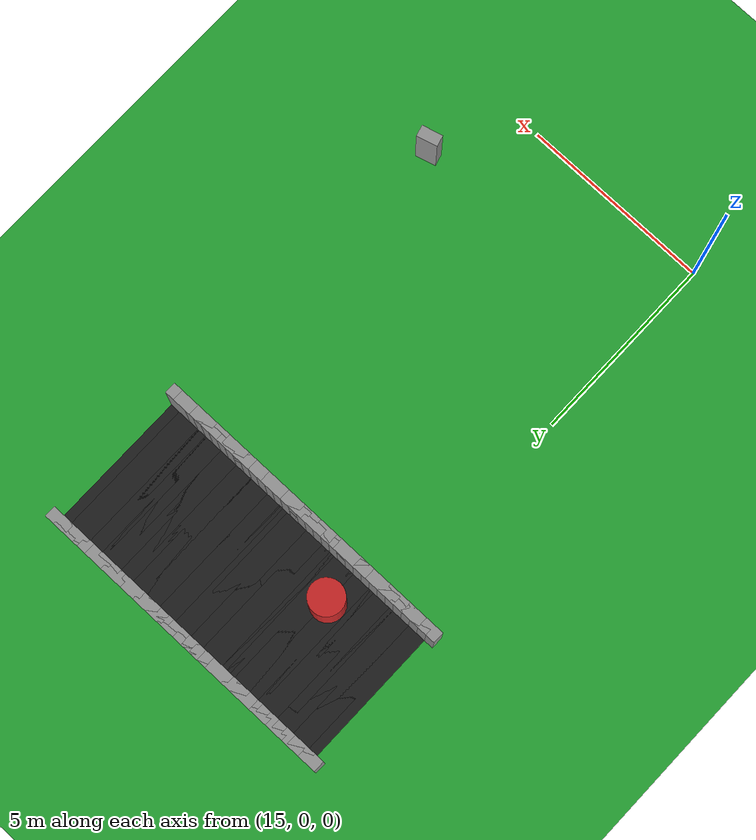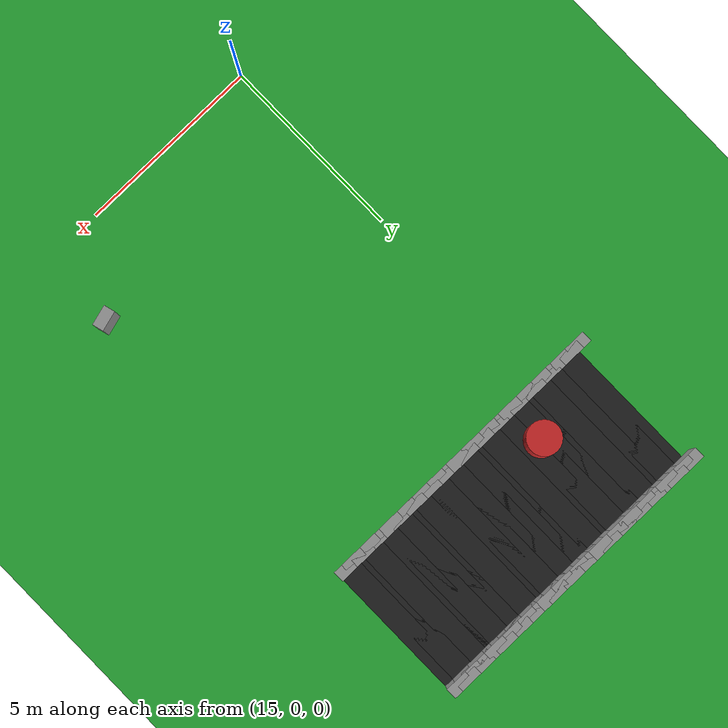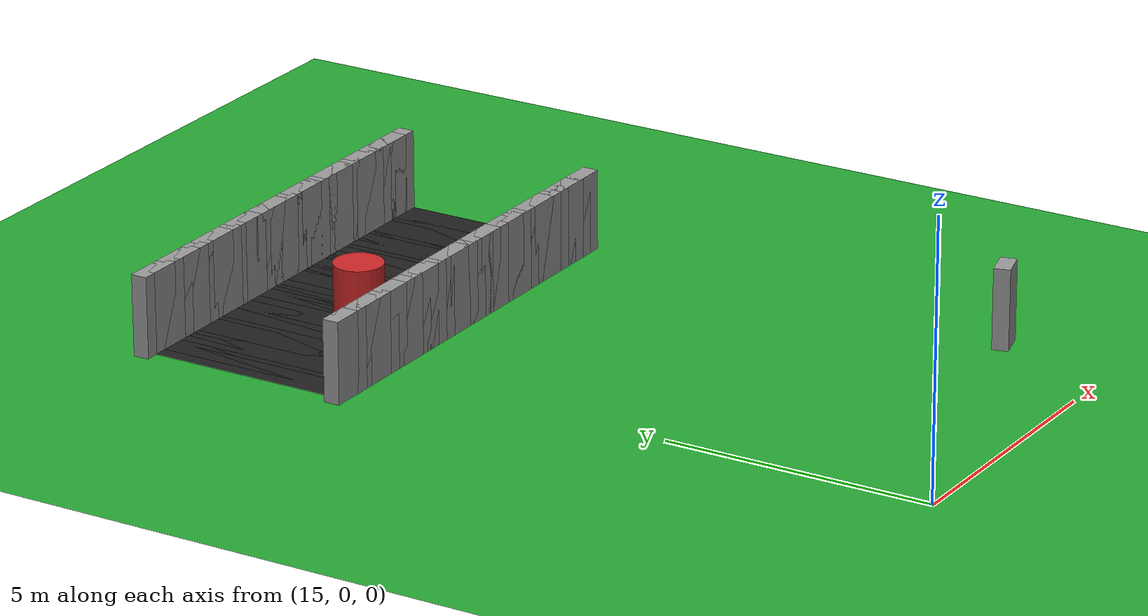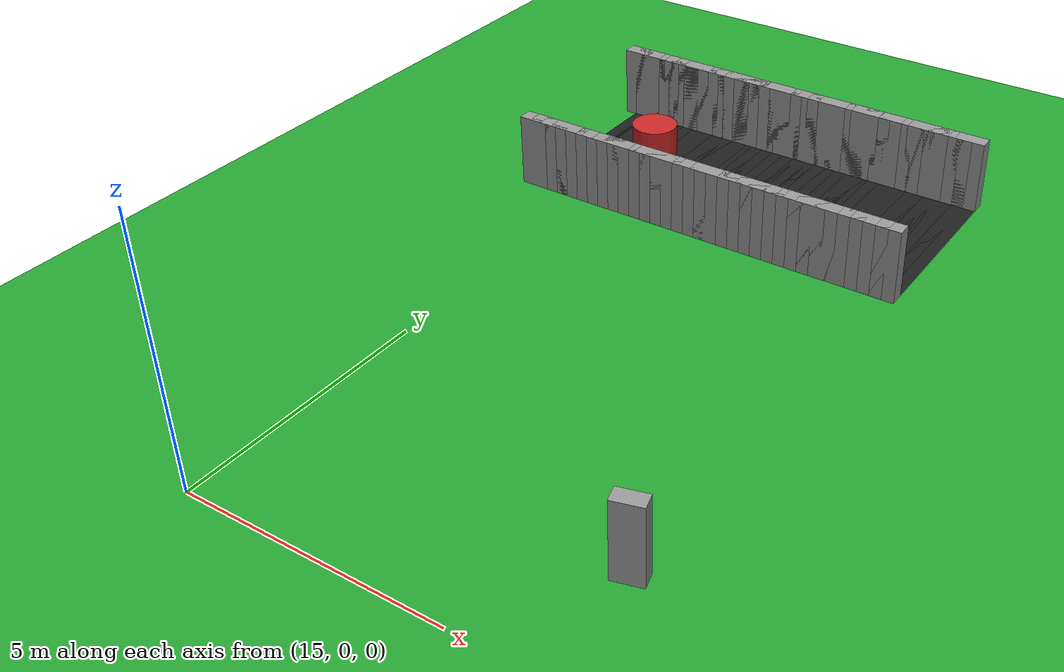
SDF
<sdf version="1.6">
 <world name="obstacle_tight">
  <include><uri>model://sun</uri></include>
  <model name="ground_plane">
   <static>true</static>
   <link name="link">
    <collision name="collision">
     <surface><friction><ode><mu>100</mu><mu2>50</mu2></ode></friction></surface>
     <geometry><plane><normal>0 0 1</normal><size>120 120</size></plane></geometry>
    </collision>
    <visual name="visual">
     <geometry><plane><normal>0 0 1</normal><size>120 120</size></plane></geometry>
     <material>
      <script><uri>file://media/materials/scripts/gazebo.material</uri><name>Gazebo/Green</name></script>
     </material>
    </visual>
   </link>
  </model>
  <model name="curbL_88">
   <static>true</static>
   <pose>21.596 2.165 0.750 0 0 0.26704</pose>
   <link name="link">
    <collision name="collision"><geometry><box><size>0.550 0.300 1.500</size></box></geometry></collision>
    <visual name="visual">
     <geometry><box><size>0.550 0.300 1.500</size></box></geometry>
     <material>
      <script><uri>file://media/materials/scripts/gazebo.material</uri><name>Gazebo/Grey</name></script>
     </material>
    </visual>
   </link>
  </model>
  <model name="asphalt_185">
   <static>true</static>
   <pose>21.549 12.562 0.005 0 0 3.14159</pose>
   <link name="link">
    <visual name="visual">
     <geometry><box><size>0.610 3.600 0.010</size></box></geometry>
     <material>
      <script><uri>file://media/materials/scripts/gazebo.material</uri><name>Gazebo/Black</name></script>
     </material>
    </visual>
   </link>
  </model>
  <model name="curbL_185">
   <static>true</static>
   <pose>21.549 10.612 0.750 0 0 3.14159</pose>
   <link name="link">
    <collision name="collision"><geometry><box><size>0.610 0.300 1.500</size></box></geometry></collision>
    <visual name="visual">
     <geometry><box><size>0.610 0.300 1.500</size></box></geometry>
     <material>
      <script><uri>file://media/materials/scripts/gazebo.material</uri><name>Gazebo/Grey</name></script>
     </material>
    </visual>
   </link>
  </model>
  <model name="curbR_185">
   <static>true</static>
   <pose>21.549 14.512 0.750 0 0 3.14159</pose>
   <link name="link">
    <collision name="collision"><geometry><box><size>0.610 0.300 1.500</size></box></geometry></collision>
    <visual name="visual">
     <geometry><box><size>0.610 0.300 1.500</size></box></geometry>
     <material>
      <script><uri>file://media/materials/scripts/gazebo.material</uri><name>Gazebo/Grey</name></script>
     </material>
    </visual>
   </link>
  </model>
  <model name="asphalt_186">
   <static>true</static>
   <pose>21.299 12.562 0.005 0 0 3.14159</pose>
   <link name="link">
    <visual name="visual">
     <geometry><box><size>0.610 3.600 0.010</size></box></geometry>
     <material>
      <script><uri>file://media/materials/scripts/gazebo.material</uri><name>Gazebo/Black</name></script>
     </material>
    </visual>
   </link>
  </model>
  <model name="curbL_186">
   <static>true</static>
   <pose>21.299 10.612 0.750 0 0 3.14159</pose>
   <link name="link">
    <collision name="collision"><geometry><box><size>0.610 0.300 1.500</size></box></geometry></collision>
    <visual name="visual">
     <geometry><box><size>0.610 0.300 1.500</size></box></geometry>
     <material>
      <script><uri>file://media/materials/scripts/gazebo.material</uri><name>Gazebo/Grey</name></script>
     </material>
    </visual>
   </link>
  </model>
  <model name="curbR_186">
   <static>true</static>
   <pose>21.299 14.512 0.750 0 0 3.14159</pose>
   <link name="link">
    <collision name="collision"><geometry><box><size>0.610 0.300 1.500</size></box></geometry></collision>
    <visual name="visual">
     <geometry><box><size>0.610 0.300 1.500</size></box></geometry>
     <material>
      <script><uri>file://media/materials/scripts/gazebo.material</uri><name>Gazebo/Grey</name></script>
     </material>
    </visual>
   </link>
  </model>
  <model name="asphalt_187">
   <static>true</static>
   <pose>21.049 12.562 0.005 0 0 3.14159</pose>
   <link name="link">
    <visual name="visual">
     <geometry><box><size>0.610 3.600 0.010</size></box></geometry>
     <material>
      <script><uri>file://media/materials/scripts/gazebo.material</uri><name>Gazebo/Black</name></script>
     </material>
    </visual>
   </link>
  </model>
  <model name="curbL_187">
   <static>true</static>
   <pose>21.049 10.612 0.750 0 0 3.14159</pose>
   <link name="link">
    <collision name="collision"><geometry><box><size>0.610 0.300 1.500</size></box></geometry></collision>
    <visual name="visual">
     <geometry><box><size>0.610 0.300 1.500</size></box></geometry>
     <material>
      <script><uri>file://media/materials/scripts/gazebo.material</uri><name>Gazebo/Grey</name></script>
     </material>
    </visual>
   </link>
  </model>
  <model name="curbR_187">
   <static>true</static>
   <pose>21.049 14.512 0.750 0 0 3.14159</pose>
   <link name="link">
    <collision name="collision"><geometry><box><size>0.610 0.300 1.500</size></box></geometry></collision>
    <visual name="visual">
     <geometry><box><size>0.610 0.300 1.500</size></box></geometry>
     <material>
      <script><uri>file://media/materials/scripts/gazebo.material</uri><name>Gazebo/Grey</name></script>
     </material>
    </visual>
   </link>
  </model>
  <model name="asphalt_188">
   <static>true</static>
   <pose>20.799 12.562 0.005 0 0 3.14159</pose>
   <link name="link">
    <visual name="visual">
     <geometry><box><size>0.610 3.600 0.010</size></box></geometry>
     <material>
      <script><uri>file://media/materials/scripts/gazebo.material</uri><name>Gazebo/Black</name></script>
     </material>
    </visual>
   </link>
  </model>
  <model name="curbL_188">
   <static>true</static>
   <pose>20.799 10.612 0.750 0 0 3.14159</pose>
   <link name="link">
    <collision name="collision"><geometry><box><size>0.610 0.300 1.500</size></box></geometry></collision>
    <visual name="visual">
     <geometry><box><size>0.610 0.300 1.500</size></box></geometry>
     <material>
      <script><uri>file://media/materials/scripts/gazebo.material</uri><name>Gazebo/Grey</name></script>
     </material>
    </visual>
   </link>
  </model>
  <model name="curbR_188">
   <static>true</static>
   <pose>20.799 14.512 0.750 0 0 3.14159</pose>
   <link name="link">
    <collision name="collision"><geometry><box><size>0.610 0.300 1.500</size></box></geometry></collision>
    <visual name="visual">
     <geometry><box><size>0.610 0.300 1.500</size></box></geometry>
     <material>
      <script><uri>file://media/materials/scripts/gazebo.material</uri><name>Gazebo/Grey</name></script>
     </material>
    </visual>
   </link>
  </model>
  <model name="asphalt_189">
   <static>true</static>
   <pose>20.549 12.562 0.005 0 0 3.14159</pose>
   <link name="link">
    <visual name="visual">
     <geometry><box><size>0.610 3.600 0.010</size></box></geometry>
     <material>
      <script><uri>file://media/materials/scripts/gazebo.material</uri><name>Gazebo/Black</name></script>
     </material>
    </visual>
   </link>
  </model>
  <model name="curbL_189">
   <static>true</static>
   <pose>20.549 10.612 0.750 0 0 3.14159</pose>
   <link name="link">
    <collision name="collision"><geometry><box><size>0.610 0.300 1.500</size></box></geometry></collision>
    <visual name="visual">
     <geometry><box><size>0.610 0.300 1.500</size></box></geometry>
     <material>
      <script><uri>file://media/materials/scripts/gazebo.material</uri><name>Gazebo/Grey</name></script>
     </material>
    </visual>
   </link>
  </model>
  <model name="curbR_189">
   <static>true</static>
   <pose>20.549 14.512 0.750 0 0 3.14159</pose>
   <link name="link">
    <collision name="collision"><geometry><box><size>0.610 0.300 1.500</size></box></geometry></collision>
    <visual name="visual">
     <geometry><box><size>0.610 0.300 1.500</size></box></geometry>
     <material>
      <script><uri>file://media/materials/scripts/gazebo.material</uri><name>Gazebo/Grey</name></script>
     </material>
    </visual>
   </link>
  </model>
  <model name="asphalt_190">
   <static>true</static>
   <pose>20.299 12.562 0.005 0 0 3.14159</pose>
   <link name="link">
    <visual name="visual">
     <geometry><box><size>0.610 3.600 0.010</size></box></geometry>
     <material>
      <script><uri>file://media/materials/scripts/gazebo.material</uri><name>Gazebo/Black</name></script>
     </material>
    </visual>
   </link>
  </model>
  <model name="curbL_190">
   <static>true</static>
   <pose>20.299 10.612 0.750 0 0 3.14159</pose>
   <link name="link">
    <collision name="collision"><geometry><box><size>0.610 0.300 1.500</size></box></geometry></collision>
    <visual name="visual">
     <geometry><box><size>0.610 0.300 1.500</size></box></geometry>
     <material>
      <script><uri>file://media/materials/scripts/gazebo.material</uri><name>Gazebo/Grey</name></script>
     </material>
    </visual>
   </link>
  </model>
  <model name="curbR_190">
   <static>true</static>
   <pose>20.299 14.512 0.750 0 0 3.14159</pose>
   <link name="link">
    <collision name="collision"><geometry><box><size>0.610 0.300 1.500</size></box></geometry></collision>
    <visual name="visual">
     <geometry><box><size>0.610 0.300 1.500</size></box></geometry>
     <material>
      <script><uri>file://media/materials/scripts/gazebo.material</uri><name>Gazebo/Grey</name></script>
     </material>
    </visual>
   </link>
  </model>
  <model name="asphalt_191">
   <static>true</static>
   <pose>20.049 12.562 0.005 0 0 3.14159</pose>
   <link name="link">
    <visual name="visual">
     <geometry><box><size>0.610 3.600 0.010</size></box></geometry>
     <material>
      <script><uri>file://media/materials/scripts/gazebo.material</uri><name>Gazebo/Black</name></script>
     </material>
    </visual>
   </link>
  </model>
  <model name="curbL_191">
   <static>true</static>
   <pose>20.049 10.612 0.750 0 0 3.14159</pose>
   <link name="link">
    <collision name="collision"><geometry><box><size>0.610 0.300 1.500</size></box></geometry></collision>
    <visual name="visual">
     <geometry><box><size>0.610 0.300 1.500</size></box></geometry>
     <material>
      <script><uri>file://media/materials/scripts/gazebo.material</uri><name>Gazebo/Grey</name></script>
     </material>
    </visual>
   </link>
  </model>
  <model name="curbR_191">
   <static>true</static>
   <pose>20.049 14.512 0.750 0 0 3.14159</pose>
   <link name="link">
    <collision name="collision"><geometry><box><size>0.610 0.300 1.500</size></box></geometry></collision>
    <visual name="visual">
     <geometry><box><size>0.610 0.300 1.500</size></box></geometry>
     <material>
      <script><uri>file://media/materials/scripts/gazebo.material</uri><name>Gazebo/Grey</name></script>
     </material>
    </visual>
   </link>
  </model>
  <model name="asphalt_192">
   <static>true</static>
   <pose>19.799 12.562 0.005 0 0 3.14159</pose>
   <link name="link">
    <visual name="visual">
     <geometry><box><size>0.610 3.600 0.010</size></box></geometry>
     <material>
      <script><uri>file://media/materials/scripts/gazebo.material</uri><name>Gazebo/Black</name></script>
     </material>
    </visual>
   </link>
  </model>
  <model name="curbL_192">
   <static>true</static>
   <pose>19.799 10.612 0.750 0 0 3.14159</pose>
   <link name="link">
    <collision name="collision"><geometry><box><size>0.610 0.300 1.500</size></box></geometry></collision>
    <visual name="visual">
     <geometry><box><size>0.610 0.300 1.500</size></box></geometry>
     <material>
      <script><uri>file://media/materials/scripts/gazebo.material</uri><name>Gazebo/Grey</name></script>
     </material>
    </visual>
   </link>
  </model>
  <model name="curbR_192">
   <static>true</static>
   <pose>19.799 14.512 0.750 0 0 3.14159</pose>
   <link name="link">
    <collision name="collision"><geometry><box><size>0.610 0.300 1.500</size></box></geometry></collision>
    <visual name="visual">
     <geometry><box><size>0.610 0.300 1.500</size></box></geometry>
     <material>
      <script><uri>file://media/materials/scripts/gazebo.material</uri><name>Gazebo/Grey</name></script>
     </material>
    </visual>
   </link>
  </model>
  <model name="asphalt_193">
   <static>true</static>
   <pose>19.549 12.562 0.005 0 0 3.14159</pose>
   <link name="link">
    <visual name="visual">
     <geometry><box><size>0.610 3.600 0.010</size></box></geometry>
     <material>
      <script><uri>file://media/materials/scripts/gazebo.material</uri><name>Gazebo/Black</name></script>
     </material>
    </visual>
   </link>
  </model>
  <model name="curbL_193">
   <static>true</static>
   <pose>19.549 10.612 0.750 0 0 3.14159</pose>
   <link name="link">
    <collision name="collision"><geometry><box><size>0.610 0.300 1.500</size></box></geometry></collision>
    <visual name="visual">
     <geometry><box><size>0.610 0.300 1.500</size></box></geometry>
     <material>
      <script><uri>file://media/materials/scripts/gazebo.material</uri><name>Gazebo/Grey</name></script>
     </material>
    </visual>
   </link>
  </model>
  <model name="curbR_193">
   <static>true</static>
   <pose>19.549 14.512 0.750 0 0 3.14159</pose>
   <link name="link">
    <collision name="collision"><geometry><box><size>0.610 0.300 1.500</size></box></geometry></collision>
    <visual name="visual">
     <geometry><box><size>0.610 0.300 1.500</size></box></geometry>
     <material>
      <script><uri>file://media/materials/scripts/gazebo.material</uri><name>Gazebo/Grey</name></script>
     </material>
    </visual>
   </link>
  </model>
  <model name="asphalt_194">
   <static>true</static>
   <pose>19.299 12.562 0.005 0 0 3.14159</pose>
   <link name="link">
    <visual name="visual">
     <geometry><box><size>0.610 3.600 0.010</size></box></geometry>
     <material>
      <script><uri>file://media/materials/scripts/gazebo.material</uri><name>Gazebo/Black</name></script>
     </material>
    </visual>
   </link>
  </model>
  <model name="curbL_194">
   <static>true</static>
   <pose>19.299 10.612 0.750 0 0 3.14159</pose>
   <link name="link">
    <collision name="collision"><geometry><box><size>0.610 0.300 1.500</size></box></geometry></collision>
    <visual name="visual">
     <geometry><box><size>0.610 0.300 1.500</size></box></geometry>
     <material>
      <script><uri>file://media/materials/scripts/gazebo.material</uri><name>Gazebo/Grey</name></script>
     </material>
    </visual>
   </link>
  </model>
  <model name="curbR_194">
   <static>true</static>
   <pose>19.299 14.512 0.750 0 0 3.14159</pose>
   <link name="link">
    <collision name="collision"><geometry><box><size>0.610 0.300 1.500</size></box></geometry></collision>
    <visual name="visual">
     <geometry><box><size>0.610 0.300 1.500</size></box></geometry>
     <material>
      <script><uri>file://media/materials/scripts/gazebo.material</uri><name>Gazebo/Grey</name></script>
     </material>
    </visual>
   </link>
  </model>
  <model name="asphalt_195">
   <static>true</static>
   <pose>19.049 12.562 0.005 0 0 3.14159</pose>
   <link name="link">
    <visual name="visual">
     <geometry><box><size>0.610 3.600 0.010</size></box></geometry>
     <material>
      <script><uri>file://media/materials/scripts/gazebo.material</uri><name>Gazebo/Black</name></script>
     </material>
    </visual>
   </link>
  </model>
  <model name="curbL_195">
   <static>true</static>
   <pose>19.049 10.612 0.750 0 0 3.14159</pose>
   <link name="link">
    <collision name="collision"><geometry><box><size>0.610 0.300 1.500</size></box></geometry></collision>
    <visual name="visual">
     <geometry><box><size>0.610 0.300 1.500</size></box></geometry>
     <material>
      <script><uri>file://media/materials/scripts/gazebo.material</uri><name>Gazebo/Grey</name></script>
     </material>
    </visual>
   </link>
  </model>
  <model name="curbR_195">
   <static>true</static>
   <pose>19.049 14.512 0.750 0 0 3.14159</pose>
   <link name="link">
    <collision name="collision"><geometry><box><size>0.610 0.300 1.500</size></box></geometry></collision>
    <visual name="visual">
     <geometry><box><size>0.610 0.300 1.500</size></box></geometry>
     <material>
      <script><uri>file://media/materials/scripts/gazebo.material</uri><name>Gazebo/Grey</name></script>
     </material>
    </visual>
   </link>
  </model>
  <model name="asphalt_196">
   <static>true</static>
   <pose>18.799 12.562 0.005 0 0 3.14159</pose>
   <link name="link">
    <visual name="visual">
     <geometry><box><size>0.610 3.600 0.010</size></box></geometry>
     <material>
      <script><uri>file://media/materials/scripts/gazebo.material</uri><name>Gazebo/Black</name></script>
     </material>
    </visual>
   </link>
  </model>
  <model name="curbL_196">
   <static>true</static>
   <pose>18.799 10.612 0.750 0 0 3.14159</pose>
   <link name="link">
    <collision name="collision"><geometry><box><size>0.610 0.300 1.500</size></box></geometry></collision>
    <visual name="visual">
     <geometry><box><size>0.610 0.300 1.500</size></box></geometry>
     <material>
      <script><uri>file://media/materials/scripts/gazebo.material</uri><name>Gazebo/Grey</name></script>
     </material>
    </visual>
   </link>
  </model>
  <model name="curbR_196">
   <static>true</static>
   <pose>18.799 14.512 0.750 0 0 3.14159</pose>
   <link name="link">
    <collision name="collision"><geometry><box><size>0.610 0.300 1.500</size></box></geometry></collision>
    <visual name="visual">
     <geometry><box><size>0.610 0.300 1.500</size></box></geometry>
     <material>
      <script><uri>file://media/materials/scripts/gazebo.material</uri><name>Gazebo/Grey</name></script>
     </material>
    </visual>
   </link>
  </model>
  <model name="asphalt_197">
   <static>true</static>
   <pose>18.549 12.562 0.005 0 0 3.14159</pose>
   <link name="link">
    <visual name="visual">
     <geometry><box><size>0.610 3.600 0.010</size></box></geometry>
     <material>
      <script><uri>file://media/materials/scripts/gazebo.material</uri><name>Gazebo/Black</name></script>
     </material>
    </visual>
   </link>
  </model>
  <model name="curbL_197">
   <static>true</static>
   <pose>18.549 10.612 0.750 0 0 3.14159</pose>
   <link name="link">
    <collision name="collision"><geometry><box><size>0.610 0.300 1.500</size></box></geometry></collision>
    <visual name="visual">
     <geometry><box><size>0.610 0.300 1.500</size></box></geometry>
     <material>
      <script><uri>file://media/materials/scripts/gazebo.material</uri><name>Gazebo/Grey</name></script>
     </material>
    </visual>
   </link>
  </model>
  <model name="curbR_197">
   <static>true</static>
   <pose>18.549 14.512 0.750 0 0 3.14159</pose>
   <link name="link">
    <collision name="collision"><geometry><box><size>0.610 0.300 1.500</size></box></geometry></collision>
    <visual name="visual">
     <geometry><box><size>0.610 0.300 1.500</size></box></geometry>
     <material>
      <script><uri>file://media/materials/scripts/gazebo.material</uri><name>Gazebo/Grey</name></script>
     </material>
    </visual>
   </link>
  </model>
  <model name="asphalt_198">
   <static>true</static>
   <pose>18.299 12.562 0.005 0 0 3.14159</pose>
   <link name="link">
    <visual name="visual">
     <geometry><box><size>0.610 3.600 0.010</size></box></geometry>
     <material>
      <script><uri>file://media/materials/scripts/gazebo.material</uri><name>Gazebo/Black</name></script>
     </material>
    </visual>
   </link>
  </model>
  <model name="curbL_198">
   <static>true</static>
   <pose>18.299 10.612 0.750 0 0 3.14159</pose>
   <link name="link">
    <collision name="collision"><geometry><box><size>0.610 0.300 1.500</size></box></geometry></collision>
    <visual name="visual">
     <geometry><box><size>0.610 0.300 1.500</size></box></geometry>
     <material>
      <script><uri>file://media/materials/scripts/gazebo.material</uri><name>Gazebo/Grey</name></script>
     </material>
    </visual>
   </link>
  </model>
  <model name="curbR_198">
   <static>true</static>
   <pose>18.299 14.512 0.750 0 0 3.14159</pose>
   <link name="link">
    <collision name="collision"><geometry><box><size>0.610 0.300 1.500</size></box></geometry></collision>
    <visual name="visual">
     <geometry><box><size>0.610 0.300 1.500</size></box></geometry>
     <material>
      <script><uri>file://media/materials/scripts/gazebo.material</uri><name>Gazebo/Grey</name></script>
     </material>
    </visual>
   </link>
  </model>
  <model name="asphalt_199">
   <static>true</static>
   <pose>18.049 12.562 0.005 0 0 3.14159</pose>
   <link name="link">
    <visual name="visual">
     <geometry><box><size>0.610 3.600 0.010</size></box></geometry>
     <material>
      <script><uri>file://media/materials/scripts/gazebo.material</uri><name>Gazebo/Black</name></script>
     </material>
    </visual>
   </link>
  </model>
  <model name="curbL_199">
   <static>true</static>
   <pose>18.049 10.612 0.750 0 0 3.14159</pose>
   <link name="link">
    <collision name="collision"><geometry><box><size>0.610 0.300 1.500</size></box></geometry></collision>
    <visual name="visual">
     <geometry><box><size>0.610 0.300 1.500</size></box></geometry>
     <material>
      <script><uri>file://media/materials/scripts/gazebo.material</uri><name>Gazebo/Grey</name></script>
     </material>
    </visual>
   </link>
  </model>
  <model name="curbR_199">
   <static>true</static>
   <pose>18.049 14.512 0.750 0 0 3.14159</pose>
   <link name="link">
    <collision name="collision"><geometry><box><size>0.610 0.300 1.500</size></box></geometry></collision>
    <visual name="visual">
     <geometry><box><size>0.610 0.300 1.500</size></box></geometry>
     <material>
      <script><uri>file://media/materials/scripts/gazebo.material</uri><name>Gazebo/Grey</name></script>
     </material>
    </visual>
   </link>
  </model>
  <model name="asphalt_200">
   <static>true</static>
   <pose>17.799 12.562 0.005 0 0 3.14159</pose>
   <link name="link">
    <visual name="visual">
     <geometry><box><size>0.610 3.600 0.010</size></box></geometry>
     <material>
      <script><uri>file://media/materials/scripts/gazebo.material</uri><name>Gazebo/Black</name></script>
     </material>
    </visual>
   </link>
  </model>
  <model name="curbL_200">
   <static>true</static>
   <pose>17.799 10.612 0.750 0 0 3.14159</pose>
   <link name="link">
    <collision name="collision"><geometry><box><size>0.610 0.300 1.500</size></box></geometry></collision>
    <visual name="visual">
     <geometry><box><size>0.610 0.300 1.500</size></box></geometry>
     <material>
      <script><uri>file://media/materials/scripts/gazebo.material</uri><name>Gazebo/Grey</name></script>
     </material>
    </visual>
   </link>
  </model>
  <model name="curbR_200">
   <static>true</static>
   <pose>17.799 14.512 0.750 0 0 3.14159</pose>
   <link name="link">
    <collision name="collision"><geometry><box><size>0.610 0.300 1.500</size></box></geometry></collision>
    <visual name="visual">
     <geometry><box><size>0.610 0.300 1.500</size></box></geometry>
     <material>
      <script><uri>file://media/materials/scripts/gazebo.material</uri><name>Gazebo/Grey</name></script>
     </material>
    </visual>
   </link>
  </model>
  <model name="asphalt_201">
   <static>true</static>
   <pose>17.549 12.562 0.005 0 0 3.14159</pose>
   <link name="link">
    <visual name="visual">
     <geometry><box><size>0.610 3.600 0.010</size></box></geometry>
     <material>
      <script><uri>file://media/materials/scripts/gazebo.material</uri><name>Gazebo/Black</name></script>
     </material>
    </visual>
   </link>
  </model>
  <model name="curbL_201">
   <static>true</static>
   <pose>17.549 10.612 0.750 0 0 3.14159</pose>
   <link name="link">
    <collision name="collision"><geometry><box><size>0.610 0.300 1.500</size></box></geometry></collision>
    <visual name="visual">
     <geometry><box><size>0.610 0.300 1.500</size></box></geometry>
     <material>
      <script><uri>file://media/materials/scripts/gazebo.material</uri><name>Gazebo/Grey</name></script>
     </material>
    </visual>
   </link>
  </model>
  <model name="curbR_201">
   <static>true</static>
   <pose>17.549 14.512 0.750 0 0 3.14159</pose>
   <link name="link">
    <collision name="collision"><geometry><box><size>0.610 0.300 1.500</size></box></geometry></collision>
    <visual name="visual">
     <geometry><box><size>0.610 0.300 1.500</size></box></geometry>
     <material>
      <script><uri>file://media/materials/scripts/gazebo.material</uri><name>Gazebo/Grey</name></script>
     </material>
    </visual>
   </link>
  </model>
  <model name="asphalt_202">
   <static>true</static>
   <pose>17.299 12.562 0.005 0 0 3.14159</pose>
   <link name="link">
    <visual name="visual">
     <geometry><box><size>0.610 3.600 0.010</size></box></geometry>
     <material>
      <script><uri>file://media/materials/scripts/gazebo.material</uri><name>Gazebo/Black</name></script>
     </material>
    </visual>
   </link>
  </model>
  <model name="curbL_202">
   <static>true</static>
   <pose>17.299 10.612 0.750 0 0 3.14159</pose>
   <link name="link">
    <collision name="collision"><geometry><box><size>0.610 0.300 1.500</size></box></geometry></collision>
    <visual name="visual">
     <geometry><box><size>0.610 0.300 1.500</size></box></geometry>
     <material>
      <script><uri>file://media/materials/scripts/gazebo.material</uri><name>Gazebo/Grey</name></script>
     </material>
    </visual>
   </link>
  </model>
  <model name="curbR_202">
   <static>true</static>
   <pose>17.299 14.512 0.750 0 0 3.14159</pose>
   <link name="link">
    <collision name="collision"><geometry><box><size>0.610 0.300 1.500</size></box></geometry></collision>
    <visual name="visual">
     <geometry><box><size>0.610 0.300 1.500</size></box></geometry>
     <material>
      <script><uri>file://media/materials/scripts/gazebo.material</uri><name>Gazebo/Grey</name></script>
     </material>
    </visual>
   </link>
  </model>
  <model name="asphalt_203">
   <static>true</static>
   <pose>17.049 12.562 0.005 0 0 3.14159</pose>
   <link name="link">
    <visual name="visual">
     <geometry><box><size>0.610 3.600 0.010</size></box></geometry>
     <material>
      <script><uri>file://media/materials/scripts/gazebo.material</uri><name>Gazebo/Black</name></script>
     </material>
    </visual>
   </link>
  </model>
  <model name="curbL_203">
   <static>true</static>
   <pose>17.049 10.612 0.750 0 0 3.14159</pose>
   <link name="link">
    <collision name="collision"><geometry><box><size>0.610 0.300 1.500</size></box></geometry></collision>
    <visual name="visual">
     <geometry><box><size>0.610 0.300 1.500</size></box></geometry>
     <material>
      <script><uri>file://media/materials/scripts/gazebo.material</uri><name>Gazebo/Grey</name></script>
     </material>
    </visual>
   </link>
  </model>
  <model name="curbR_203">
   <static>true</static>
   <pose>17.049 14.512 0.750 0 0 3.14159</pose>
   <link name="link">
    <collision name="collision"><geometry><box><size>0.610 0.300 1.500</size></box></geometry></collision>
    <visual name="visual">
     <geometry><box><size>0.610 0.300 1.500</size></box></geometry>
     <material>
      <script><uri>file://media/materials/scripts/gazebo.material</uri><name>Gazebo/Grey</name></script>
     </material>
    </visual>
   </link>
  </model>
  <model name="asphalt_204">
   <static>true</static>
   <pose>16.799 12.562 0.005 0 0 3.14159</pose>
   <link name="link">
    <visual name="visual">
     <geometry><box><size>0.610 3.600 0.010</size></box></geometry>
     <material>
      <script><uri>file://media/materials/scripts/gazebo.material</uri><name>Gazebo/Black</name></script>
     </material>
    </visual>
   </link>
  </model>
  <model name="curbL_204">
   <static>true</static>
   <pose>16.799 10.612 0.750 0 0 3.14159</pose>
   <link name="link">
    <collision name="collision"><geometry><box><size>0.610 0.300 1.500</size></box></geometry></collision>
    <visual name="visual">
     <geometry><box><size>0.610 0.300 1.500</size></box></geometry>
     <material>
      <script><uri>file://media/materials/scripts/gazebo.material</uri><name>Gazebo/Grey</name></script>
     </material>
    </visual>
   </link>
  </model>
  <model name="curbR_204">
   <static>true</static>
   <pose>16.799 14.512 0.750 0 0 3.14159</pose>
   <link name="link">
    <collision name="collision"><geometry><box><size>0.610 0.300 1.500</size></box></geometry></collision>
    <visual name="visual">
     <geometry><box><size>0.610 0.300 1.500</size></box></geometry>
     <material>
      <script><uri>file://media/materials/scripts/gazebo.material</uri><name>Gazebo/Grey</name></script>
     </material>
    </visual>
   </link>
  </model>
  <model name="asphalt_205">
   <static>true</static>
   <pose>16.549 12.562 0.005 0 0 3.14159</pose>
   <link name="link">
    <visual name="visual">
     <geometry><box><size>0.610 3.600 0.010</size></box></geometry>
     <material>
      <script><uri>file://media/materials/scripts/gazebo.material</uri><name>Gazebo/Black</name></script>
     </material>
    </visual>
   </link>
  </model>
  <model name="curbL_205">
   <static>true</static>
   <pose>16.549 10.612 0.750 0 0 3.14159</pose>
   <link name="link">
    <collision name="collision"><geometry><box><size>0.610 0.300 1.500</size></box></geometry></collision>
    <visual name="visual">
     <geometry><box><size>0.610 0.300 1.500</size></box></geometry>
     <material>
      <script><uri>file://media/materials/scripts/gazebo.material</uri><name>Gazebo/Grey</name></script>
     </material>
    </visual>
   </link>
  </model>
  <model name="curbR_205">
   <static>true</static>
   <pose>16.549 14.512 0.750 0 0 3.14159</pose>
   <link name="link">
    <collision name="collision"><geometry><box><size>0.610 0.300 1.500</size></box></geometry></collision>
    <visual name="visual">
     <geometry><box><size>0.610 0.300 1.500</size></box></geometry>
     <material>
      <script><uri>file://media/materials/scripts/gazebo.material</uri><name>Gazebo/Grey</name></script>
     </material>
    </visual>
   </link>
  </model>
  <model name="asphalt_206">
   <static>true</static>
   <pose>16.299 12.562 0.005 0 0 3.14159</pose>
   <link name="link">
    <visual name="visual">
     <geometry><box><size>0.610 3.600 0.010</size></box></geometry>
     <material>
      <script><uri>file://media/materials/scripts/gazebo.material</uri><name>Gazebo/Black</name></script>
     </material>
    </visual>
   </link>
  </model>
  <model name="curbL_206">
   <static>true</static>
   <pose>16.299 10.612 0.750 0 0 3.14159</pose>
   <link name="link">
    <collision name="collision"><geometry><box><size>0.610 0.300 1.500</size></box></geometry></collision>
    <visual name="visual">
     <geometry><box><size>0.610 0.300 1.500</size></box></geometry>
     <material>
      <script><uri>file://media/materials/scripts/gazebo.material</uri><name>Gazebo/Grey</name></script>
     </material>
    </visual>
   </link>
  </model>
  <model name="curbR_206">
   <static>true</static>
   <pose>16.299 14.512 0.750 0 0 3.14159</pose>
   <link name="link">
    <collision name="collision"><geometry><box><size>0.610 0.300 1.500</size></box></geometry></collision>
    <visual name="visual">
     <geometry><box><size>0.610 0.300 1.500</size></box></geometry>
     <material>
      <script><uri>file://media/materials/scripts/gazebo.material</uri><name>Gazebo/Grey</name></script>
     </material>
    </visual>
   </link>
  </model>
  <model name="asphalt_207">
   <static>true</static>
   <pose>16.049 12.562 0.005 0 0 3.14159</pose>
   <link name="link">
    <visual name="visual">
     <geometry><box><size>0.610 3.600 0.010</size></box></geometry>
     <material>
      <script><uri>file://media/materials/scripts/gazebo.material</uri><name>Gazebo/Black</name></script>
     </material>
    </visual>
   </link>
  </model>
  <model name="curbL_207">
   <static>true</static>
   <pose>16.049 10.612 0.750 0 0 3.14159</pose>
   <link name="link">
    <collision name="collision"><geometry><box><size>0.610 0.300 1.500</size></box></geometry></collision>
    <visual name="visual">
     <geometry><box><size>0.610 0.300 1.500</size></box></geometry>
     <material>
      <script><uri>file://media/materials/scripts/gazebo.material</uri><name>Gazebo/Grey</name></script>
     </material>
    </visual>
   </link>
  </model>
  <model name="curbR_207">
   <static>true</static>
   <pose>16.049 14.512 0.750 0 0 3.14159</pose>
   <link name="link">
    <collision name="collision"><geometry><box><size>0.610 0.300 1.500</size></box></geometry></collision>
    <visual name="visual">
     <geometry><box><size>0.610 0.300 1.500</size></box></geometry>
     <material>
      <script><uri>file://media/materials/scripts/gazebo.material</uri><name>Gazebo/Grey</name></script>
     </material>
    </visual>
   </link>
  </model>
  <model name="asphalt_208">
   <static>true</static>
   <pose>15.799 12.562 0.005 0 0 3.14159</pose>
   <link name="link">
    <visual name="visual">
     <geometry><box><size>0.610 3.600 0.010</size></box></geometry>
     <material>
      <script><uri>file://media/materials/scripts/gazebo.material</uri><name>Gazebo/Black</name></script>
     </material>
    </visual>
   </link>
  </model>
  <model name="curbL_208">
   <static>true</static>
   <pose>15.799 10.612 0.750 0 0 3.14159</pose>
   <link name="link">
    <collision name="collision"><geometry><box><size>0.610 0.300 1.500</size></box></geometry></collision>
    <visual name="visual">
     <geometry><box><size>0.610 0.300 1.500</size></box></geometry>
     <material>
      <script><uri>file://media/materials/scripts/gazebo.material</uri><name>Gazebo/Grey</name></script>
     </material>
    </visual>
   </link>
  </model>
  <model name="curbR_208">
   <static>true</static>
   <pose>15.799 14.512 0.750 0 0 3.14159</pose>
   <link name="link">
    <collision name="collision"><geometry><box><size>0.610 0.300 1.500</size></box></geometry></collision>
    <visual name="visual">
     <geometry><box><size>0.610 0.300 1.500</size></box></geometry>
     <material>
      <script><uri>file://media/materials/scripts/gazebo.material</uri><name>Gazebo/Grey</name></script>
     </material>
    </visual>
   </link>
  </model>
  <model name="asphalt_209">
   <static>true</static>
   <pose>15.549 12.562 0.005 0 0 3.14159</pose>
   <link name="link">
    <visual name="visual">
     <geometry><box><size>0.610 3.600 0.010</size></box></geometry>
     <material>
      <script><uri>file://media/materials/scripts/gazebo.material</uri><name>Gazebo/Black</name></script>
     </material>
    </visual>
   </link>
  </model>
  <model name="curbL_209">
   <static>true</static>
   <pose>15.549 10.612 0.750 0 0 3.14159</pose>
   <link name="link">
    <collision name="collision"><geometry><box><size>0.610 0.300 1.500</size></box></geometry></collision>
    <visual name="visual">
     <geometry><box><size>0.610 0.300 1.500</size></box></geometry>
     <material>
      <script><uri>file://media/materials/scripts/gazebo.material</uri><name>Gazebo/Grey</name></script>
     </material>
    </visual>
   </link>
  </model>
  <model name="curbR_209">
   <static>true</static>
   <pose>15.549 14.512 0.750 0 0 3.14159</pose>
   <link name="link">
    <collision name="collision"><geometry><box><size>0.610 0.300 1.500</size></box></geometry></collision>
    <visual name="visual">
     <geometry><box><size>0.610 0.300 1.500</size></box></geometry>
     <material>
      <script><uri>file://media/materials/scripts/gazebo.material</uri><name>Gazebo/Grey</name></script>
     </material>
    </visual>
   </link>
  </model>
  <model name="asphalt_210">
   <static>true</static>
   <pose>15.299 12.562 0.005 0 0 3.14159</pose>
   <link name="link">
    <visual name="visual">
     <geometry><box><size>0.610 3.600 0.010</size></box></geometry>
     <material>
      <script><uri>file://media/materials/scripts/gazebo.material</uri><name>Gazebo/Black</name></script>
     </material>
    </visual>
   </link>
  </model>
  <model name="curbL_210">
   <static>true</static>
   <pose>15.299 10.612 0.750 0 0 3.14159</pose>
   <link name="link">
    <collision name="collision"><geometry><box><size>0.610 0.300 1.500</size></box></geometry></collision>
    <visual name="visual">
     <geometry><box><size>0.610 0.300 1.500</size></box></geometry>
     <material>
      <script><uri>file://media/materials/scripts/gazebo.material</uri><name>Gazebo/Grey</name></script>
     </material>
    </visual>
   </link>
  </model>
  <model name="curbR_210">
   <static>true</static>
   <pose>15.299 14.512 0.750 0 0 3.14159</pose>
   <link name="link">
    <collision name="collision"><geometry><box><size>0.610 0.300 1.500</size></box></geometry></collision>
    <visual name="visual">
     <geometry><box><size>0.610 0.300 1.500</size></box></geometry>
     <material>
      <script><uri>file://media/materials/scripts/gazebo.material</uri><name>Gazebo/Grey</name></script>
     </material>
    </visual>
   </link>
  </model>
  <model name="asphalt_211">
   <static>true</static>
   <pose>15.049 12.562 0.005 0 0 3.14159</pose>
   <link name="link">
    <visual name="visual">
     <geometry><box><size>0.610 3.600 0.010</size></box></geometry>
     <material>
      <script><uri>file://media/materials/scripts/gazebo.material</uri><name>Gazebo/Black</name></script>
     </material>
    </visual>
   </link>
  </model>
  <model name="curbL_211">
   <static>true</static>
   <pose>15.049 10.612 0.750 0 0 3.14159</pose>
   <link name="link">
    <collision name="collision"><geometry><box><size>0.610 0.300 1.500</size></box></geometry></collision>
    <visual name="visual">
     <geometry><box><size>0.610 0.300 1.500</size></box></geometry>
     <material>
      <script><uri>file://media/materials/scripts/gazebo.material</uri><name>Gazebo/Grey</name></script>
     </material>
    </visual>
   </link>
  </model>
  <model name="curbR_211">
   <static>true</static>
   <pose>15.049 14.512 0.750 0 0 3.14159</pose>
   <link name="link">
    <collision name="collision"><geometry><box><size>0.610 0.300 1.500</size></box></geometry></collision>
    <visual name="visual">
     <geometry><box><size>0.610 0.300 1.500</size></box></geometry>
     <material>
      <script><uri>file://media/materials/scripts/gazebo.material</uri><name>Gazebo/Grey</name></script>
     </material>
    </visual>
   </link>
  </model>
  <model name="asphalt_212">
   <static>true</static>
   <pose>14.799 12.562 0.005 0 0 3.14159</pose>
   <link name="link">
    <visual name="visual">
     <geometry><box><size>0.610 3.600 0.010</size></box></geometry>
     <material>
      <script><uri>file://media/materials/scripts/gazebo.material</uri><name>Gazebo/Black</name></script>
     </material>
    </visual>
   </link>
  </model>
  <model name="curbL_212">
   <static>true</static>
   <pose>14.799 10.612 0.750 0 0 3.14159</pose>
   <link name="link">
    <collision name="collision"><geometry><box><size>0.610 0.300 1.500</size></box></geometry></collision>
    <visual name="visual">
     <geometry><box><size>0.610 0.300 1.500</size></box></geometry>
     <material>
      <script><uri>file://media/materials/scripts/gazebo.material</uri><name>Gazebo/Grey</name></script>
     </material>
    </visual>
   </link>
  </model>
  <model name="curbR_212">
   <static>true</static>
   <pose>14.799 14.512 0.750 0 0 3.14159</pose>
   <link name="link">
    <collision name="collision"><geometry><box><size>0.610 0.300 1.500</size></box></geometry></collision>
    <visual name="visual">
     <geometry><box><size>0.610 0.300 1.500</size></box></geometry>
     <material>
      <script><uri>file://media/materials/scripts/gazebo.material</uri><name>Gazebo/Grey</name></script>
     </material>
    </visual>
   </link>
  </model>
  <model name="asphalt_213">
   <static>true</static>
   <pose>14.549 12.562 0.005 0 0 3.14159</pose>
   <link name="link">
    <visual name="visual">
     <geometry><box><size>0.610 3.600 0.010</size></box></geometry>
     <material>
      <script><uri>file://media/materials/scripts/gazebo.material</uri><name>Gazebo/Black</name></script>
     </material>
    </visual>
   </link>
  </model>
  <model name="curbL_213">
   <static>true</static>
   <pose>14.549 10.612 0.750 0 0 3.14159</pose>
   <link name="link">
    <collision name="collision"><geometry><box><size>0.610 0.300 1.500</size></box></geometry></collision>
    <visual name="visual">
     <geometry><box><size>0.610 0.300 1.500</size></box></geometry>
     <material>
      <script><uri>file://media/materials/scripts/gazebo.material</uri><name>Gazebo/Grey</name></script>
     </material>
    </visual>
   </link>
  </model>
  <model name="curbR_213">
   <static>true</static>
   <pose>14.549 14.512 0.750 0 0 3.14159</pose>
   <link name="link">
    <collision name="collision"><geometry><box><size>0.610 0.300 1.500</size></box></geometry></collision>
    <visual name="visual">
     <geometry><box><size>0.610 0.300 1.500</size></box></geometry>
     <material>
      <script><uri>file://media/materials/scripts/gazebo.material</uri><name>Gazebo/Grey</name></script>
     </material>
    </visual>
   </link>
  </model>
  <model name="asphalt_214">
   <static>true</static>
   <pose>14.299 12.562 0.005 0 0 3.14159</pose>
   <link name="link">
    <visual name="visual">
     <geometry><box><size>0.610 3.600 0.010</size></box></geometry>
     <material>
      <script><uri>file://media/materials/scripts/gazebo.material</uri><name>Gazebo/Black</name></script>
     </material>
    </visual>
   </link>
  </model>
  <model name="curbL_214">
   <static>true</static>
   <pose>14.299 10.612 0.750 0 0 3.14159</pose>
   <link name="link">
    <collision name="collision"><geometry><box><size>0.610 0.300 1.500</size></box></geometry></collision>
    <visual name="visual">
     <geometry><box><size>0.610 0.300 1.500</size></box></geometry>
     <material>
      <script><uri>file://media/materials/scripts/gazebo.material</uri><name>Gazebo/Grey</name></script>
     </material>
    </visual>
   </link>
  </model>
  <model name="curbR_214">
   <static>true</static>
   <pose>14.299 14.512 0.750 0 0 3.14159</pose>
   <link name="link">
    <collision name="collision"><geometry><box><size>0.610 0.300 1.500</size></box></geometry></collision>
    <visual name="visual">
     <geometry><box><size>0.610 0.300 1.500</size></box></geometry>
     <material>
      <script><uri>file://media/materials/scripts/gazebo.material</uri><name>Gazebo/Grey</name></script>
     </material>
    </visual>
   </link>
  </model>
  <model name="asphalt_215">
   <static>true</static>
   <pose>14.049 12.562 0.005 0 0 3.14159</pose>
   <link name="link">
    <visual name="visual">
     <geometry><box><size>0.610 3.600 0.010</size></box></geometry>
     <material>
      <script><uri>file://media/materials/scripts/gazebo.material</uri><name>Gazebo/Black</name></script>
     </material>
    </visual>
   </link>
  </model>
  <model name="curbL_215">
   <static>true</static>
   <pose>14.049 10.612 0.750 0 0 3.14159</pose>
   <link name="link">
    <collision name="collision"><geometry><box><size>0.610 0.300 1.500</size></box></geometry></collision>
    <visual name="visual">
     <geometry><box><size>0.610 0.300 1.500</size></box></geometry>
     <material>
      <script><uri>file://media/materials/scripts/gazebo.material</uri><name>Gazebo/Grey</name></script>
     </material>
    </visual>
   </link>
  </model>
  <model name="curbR_215">
   <static>true</static>
   <pose>14.049 14.512 0.750 0 0 3.14159</pose>
   <link name="link">
    <collision name="collision"><geometry><box><size>0.610 0.300 1.500</size></box></geometry></collision>
    <visual name="visual">
     <geometry><box><size>0.610 0.300 1.500</size></box></geometry>
     <material>
      <script><uri>file://media/materials/scripts/gazebo.material</uri><name>Gazebo/Grey</name></script>
     </material>
    </visual>
   </link>
  </model>
  <model name="curbL_216">
   <static>true</static>
   <pose>13.799 10.612 0.750 0 0 3.14159</pose>
   <link name="link">
    <collision name="collision"><geometry><box><size>0.610 0.300 1.500</size></box></geometry></collision>
    <visual name="visual">
     <geometry><box><size>0.610 0.300 1.500</size></box></geometry>
     <material>
      <script><uri>file://media/materials/scripts/gazebo.material</uri><name>Gazebo/Grey</name></script>
     </material>
    </visual>
   </link>
  </model>
  <model name="curbR_216">
   <static>true</static>
   <pose>13.799 14.512 0.750 0 0 3.14159</pose>
   <link name="link">
    <collision name="collision"><geometry><box><size>0.610 0.300 1.500</size></box></geometry></collision>
    <visual name="visual">
     <geometry><box><size>0.610 0.300 1.500</size></box></geometry>
     <material>
      <script><uri>file://media/materials/scripts/gazebo.material</uri><name>Gazebo/Grey</name></script>
     </material>
    </visual>
   </link>
  </model>
  <model name="obs_4">
   <static>true</static>
   <pose>15.954 11.662 0.750 0 0 0</pose>
   <link name="link">
    <collision name="collision">
     <geometry><cylinder><radius>0.450</radius><length>1.500</length></cylinder></geometry>
    </collision>
    <visual name="visual">
     <geometry><cylinder><radius>0.450</radius><length>1.500</length></cylinder></geometry>
     <material>
      <script><uri>file://media/materials/scripts/gazebo.material</uri><name>Gazebo/Red</name></script>
     </material>
    </visual>
   </link>
  </model>
 </world>
</sdf>
